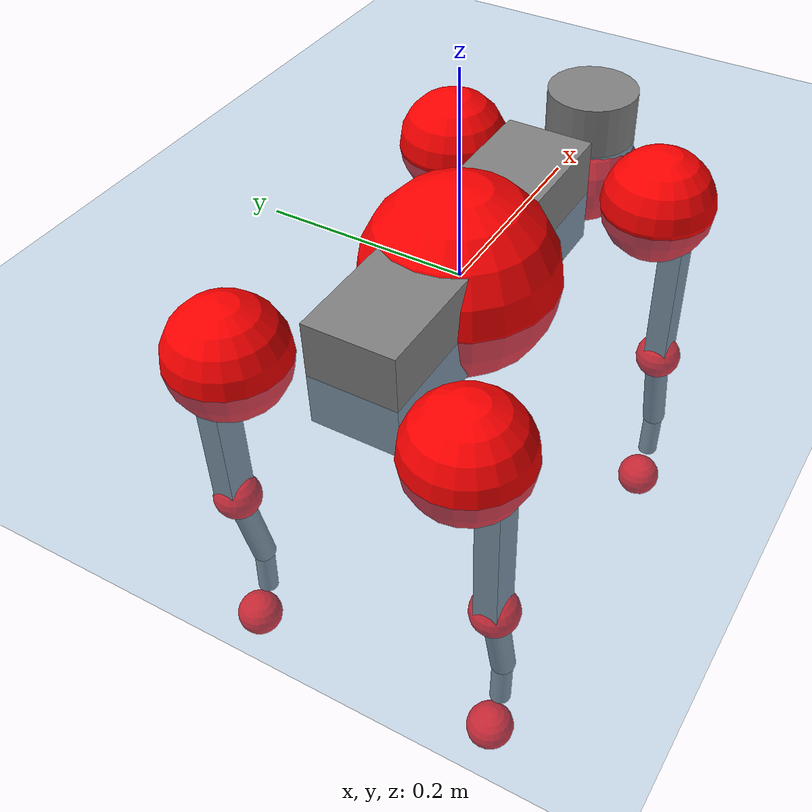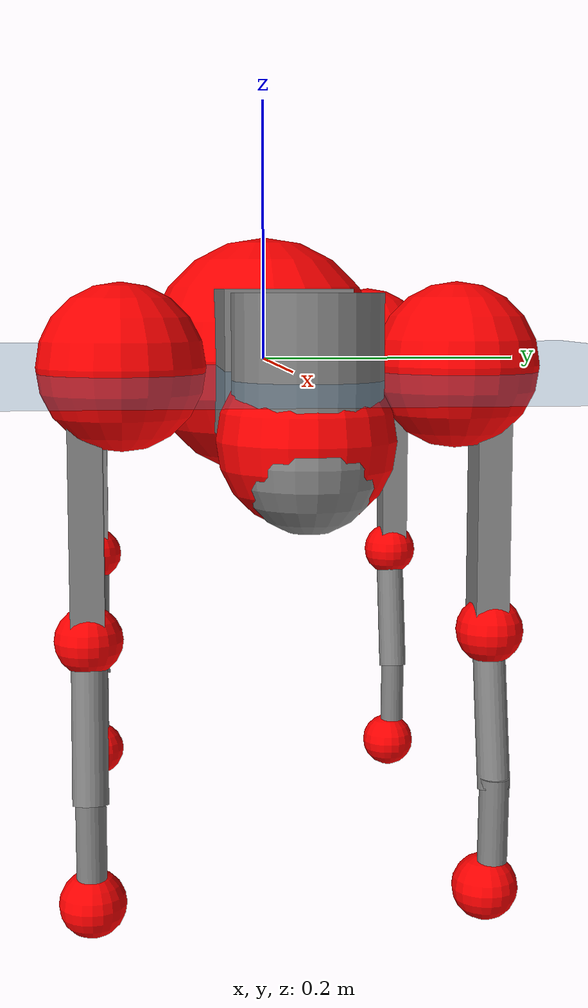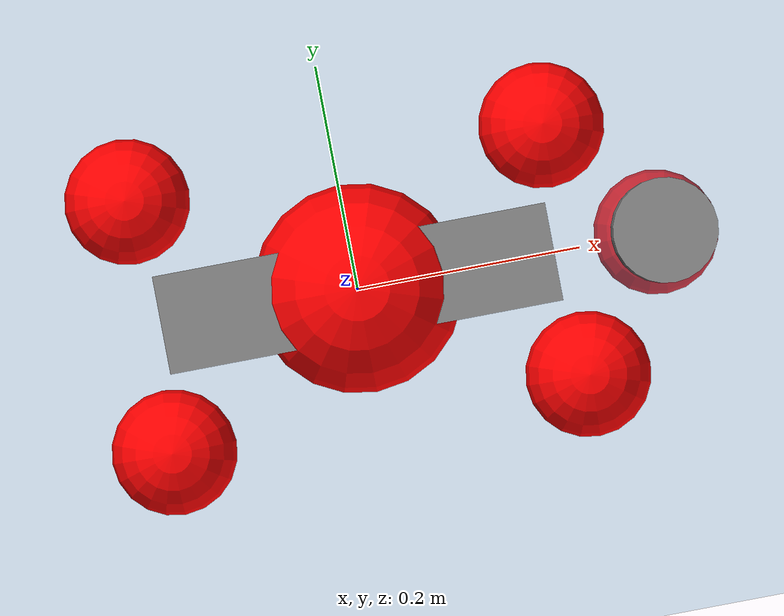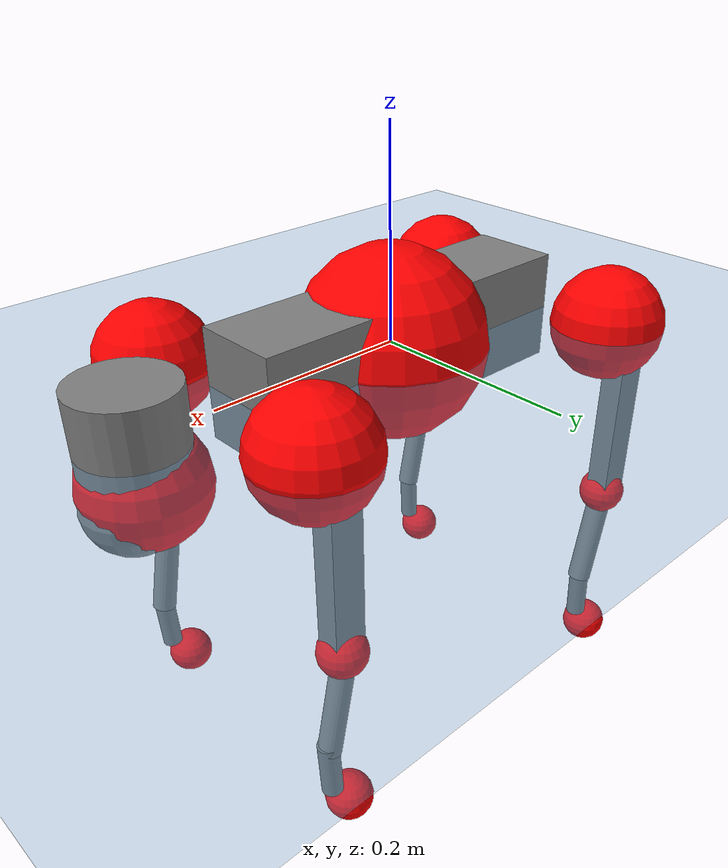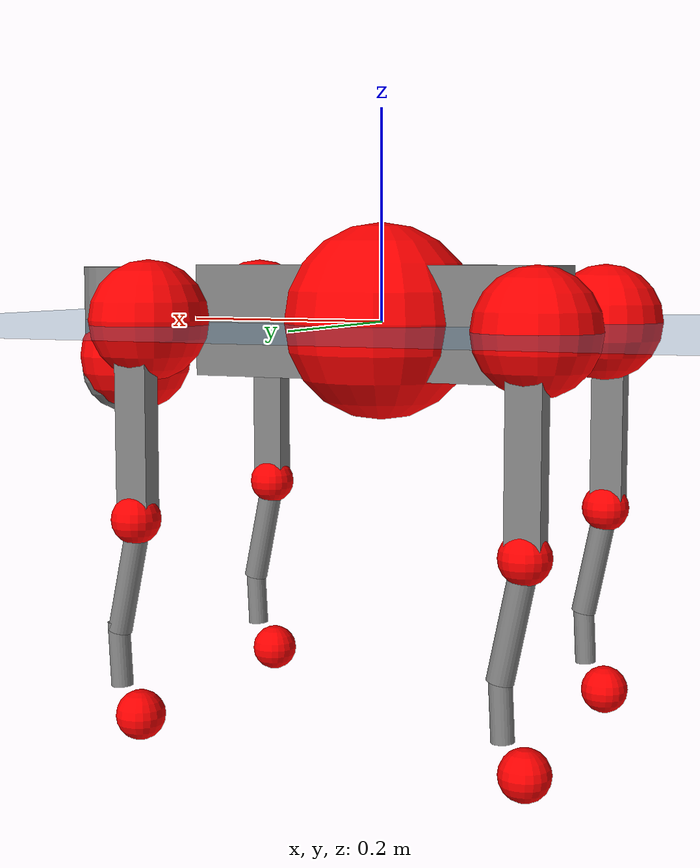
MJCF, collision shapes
<mujoco model="go2">
  <compiler angle="radian" assetdir="assets" balanceinertia="true" inertiafromgeom="false"/>

  <option timestep="0.005" density="1.2" viscosity="2e-05"/>

  <size nkey="1"/>

  <visual>
    <quality shadowsize="8192"/>
    <map shadowclip="0.5"/>
  </visual>

  <default>
    <default class="/">
      <geom contype="0" conaffinity="0" group="1" solref="-1000 -80"/>
      <site size="0.01 0.005 0.005" group="5"/>
      <general forcelimited="true" biastype="affine" gainprm="20" biasprm="0 -20 -0.5"/>
      <default class="go2">
        <joint armature="0.01" damping="0.01" frictionloss="0.2"/>
        <geom condim="1" margin="0.001"/>
        <default class="visual">
          <geom type="mesh" group="2"/>
        </default>
        <default class="collision">
          <geom group="3"/>
          <default class="foot">
            <geom size="0.022 0 0" condim="6" priority="1" friction="0.8 0.02 0.01" solimp="0.015 1 0.022"/>
          </default>
        </default>
        <default class="reward_collision_sphere">
          <geom group="5" rgba="1 0 0 1"/>
        </default>
      </default>
    </default>
  </default>

  <asset>
    <texture type="skybox" colorspace="auto" name="//unnamed_texture_0" builtin="gradient" rgb1="0.95 0.95 0.95" rgb2="0.95 0.95 0.95" width="100" height="600"/>
    <texture type="2d" colorspace="auto" name="texplane" builtin="checker" rgb1="0.345 0.575 0.748" rgb2="0.345 0.575 0.748" markrgb="1 1 1" width="512" height="512"/>
    <material name="MatPlane" class="/" texture="texplane" texuniform="true" texrepeat="2 2" specular="0.9"/>
    <material name="metal" class="/" rgba="0.9 0.95 0.95 1"/>
    <material name="black" class="/" rgba="0 0 0 1"/>
    <material name="white" class="/"/>
    <material name="gray" class="/" rgba="0.671705 0.692426 0.77427 1"/>
    <mesh name="base_0" class="/" file="base_0.obj"/>
    <mesh name="base_1" class="/" file="base_1.obj"/>
    <mesh name="base_2" class="/" file="base_2.obj"/>
    <mesh name="base_3" class="/" file="base_3.obj"/>
    <mesh name="base_4" class="/" file="base_4.obj"/>
    <mesh name="hip_0" class="/" file="hip_0.obj"/>
    <mesh name="hip_1" class="/" file="hip_1.obj"/>
    <mesh name="thigh_0" class="/" file="thigh_0.obj"/>
    <mesh name="thigh_1" class="/" file="thigh_1.obj"/>
    <mesh name="thigh_mirror_0" class="/" file="thigh_mirror_0.obj"/>
    <mesh name="thigh_mirror_1" class="/" file="thigh_mirror_1.obj"/>
    <mesh name="calf_0" class="/" file="calf_0.obj"/>
    <mesh name="calf_1" class="/" file="calf_1.obj"/>
    <mesh name="calf_mirror_0" class="/" file="calf_mirror_0.obj"/>
    <mesh name="calf_mirror_1" class="/" file="calf_mirror_1.obj"/>
    <mesh name="foot" class="/" file="foot.obj"/>
  </asset>

  <worldbody>
    <geom name="floor" class="/" size="100 100 0.125" type="plane" group="0" material="MatPlane"/>
    <light name="toplight_shadow" class="/" pos="0 0 5" dir="0.0990148 0.0990148 -0.990148" type="directional" ambient="0.04 0.04 0.04" diffuse="0.55 0.55 0.55" specular="0.12 0.12 0.12"/>
    <light name="toplight_fill" class="/" pos="0 0 5" dir="0.0990148 0.0990148 -0.990148" type="directional" castshadow="false" ambient="0.04 0.04 0.04" diffuse="0.3 0.3 0.3" specular="0.08 0.08 0.08"/>
    <body name="trunk" childclass="go2" pos="0.000221062 0.000527224 0.000953816" quat="1 -4.39346e-05 -0.000219738 0.000201833">
      <inertial pos="0.0211958 -0.000765777 -0.00463579" quat="-0.0020343 0.713388 -0.000611214 0.700766" mass="5.60079" diaginertia="0.0920149 0.08179 0.0123167"/>
      <joint name="//unnamed_joint_0" type="free" armature="0" damping="0" frictionloss="0"/>
      <geom name="//unnamed_geom_1" class="visual" material="black" mesh="base_0"/>
      <geom name="//unnamed_geom_2" class="visual" material="black" mesh="base_1"/>
      <geom name="//unnamed_geom_3" class="visual" material="black" mesh="base_2"/>
      <geom name="//unnamed_geom_4" class="visual" material="white" mesh="base_3"/>
      <geom name="//unnamed_geom_5" class="visual" material="gray" mesh="base_4"/>
      <geom name="trunk_1" class="collision" size="0.175403 0.0435944 0.0531525" type="box"/>
      <geom name="trunk_2" class="collision" size="0.046625 0.0419625" pos="0.275298 0 0.00867565" type="cylinder"/>
      <geom name="trunk_3" class="collision" size="0.0438275" pos="0.283025 0 -0.0520539"/>
      <geom name="//unnamed_geom_9" class="reward_collision_sphere" size="0.09325"/>
      <geom name="//unnamed_geom_10" class="reward_collision_sphere" size="0.05595" pos="0.270468 0 -0.0390404"/>
      <site name="imu" pos="-0.0290165 -0.00919577 0.0405117" size="0.009325"/>
      <camera name="track" pos="0 -1.92795 0" quat="0.707107 0.707107 0 0" mode="trackcom"/>
      <camera name="ego_camera" pos="0.301379 0 0.0390404" quat="-0.5 -0.5 0.5 0.5"/>
      <body name="FL_hip" pos="0.186469 0.0443425 0.00239217" quat="1 -0.000320131 -0.000270291 0.000706033">
        <inertial pos="-0.00417952 0.002256 -1.93541e-05" quat="0.497488 0.499007 0.505566 0.497896" mass="0.558097" diaginertia="0.000755184 0.000504932 0.000236797"/>
        <joint name="FL_hip_joint" pos="0 0 0" axis="0.999994 0.00213855 -0.00285786" range="-1.0254 1.04682" armature="0.00933175" damping="0.00907498" frictionloss="0.181763"/>
        <geom name="//unnamed_geom_11" class="visual" material="metal" mesh="hip_0"/>
        <geom name="//unnamed_geom_12" class="visual" material="gray" mesh="hip_1"/>
        <geom name="//unnamed_geom_13" class="collision" size="0.042895 0.01865" pos="0 0.0771181 0" quat="0.707107 0.707107 0 0" type="cylinder"/>
        <geom name="//unnamed_geom_14" class="reward_collision_sphere" size="0.05595" pos="0 0.0674784 0"/>
        <body name="FL_thigh" pos="-1.09162e-05 0.0920728 0.00214286" quat="1 -0.000139886 -0.000134787 2.98615e-05">
          <inertial pos="-0.00366821 -0.0226012 -0.0301006" quat="0.829112 0.0837176 -0.0212406 0.552371" mass="0.926972" diaginertia="0.00502062 0.00490503 0.000432807"/>
          <joint name="FL_thigh_joint" pos="0 0 0" axis="0.000453925 1 -0.00045699" range="-1.57207 3.5275" armature="0.00968455" damping="0" frictionloss="0.186746"/>
          <geom name="//unnamed_geom_15" class="visual" material="metal" mesh="thigh_0"/>
          <geom name="//unnamed_geom_16" class="visual" material="gray" mesh="thigh_1"/>
          <geom name="//unnamed_geom_17" class="collision" size="0.0993112 0.0114231 0.0158525" pos="0 0 -0.0923957" quat="0.707107 0 0.707107 0" type="box"/>
          <body name="FL_calf" pos="0.0010721 0.00133426 -0.185071" quat="1 3.31248e-05 0.00010374 -0.000128702">
            <inertial pos="0.00665949 0.00050133 -0.12243" quat="0.710389 0.00171947 -0.00410521 0.703796" mass="0.197983" diaginertia="0.00124432 0.0012136 2.59996e-05"/>
            <joint name="FL_calf_joint" pos="0 0 0" axis="0.00180351 0.999989 -0.00428509" range="-2.73424 -0.852008" armature="0.00921504" damping="0.00423916" frictionloss="0.18186"/>
            <geom name="//unnamed_geom_18" class="visual" material="gray" mesh="calf_0"/>
            <geom name="//unnamed_geom_19" class="visual" material="black" mesh="calf_1"/>
            <geom name="FL_calf0" class="collision" size="0.01119 0.05595" pos="0.00772766 0 -0.0520539" quat="0.994493 0 -0.104807 0" type="cylinder"/>
            <geom name="//unnamed_geom_21" class="collision" size="0.0102575 0.0303062" pos="0.0193191 0 -0.1284" quat="0.999688 0 0.0249974 0" type="cylinder"/>
            <geom name="//unnamed_geom_22" class="visual" pos="0 0 -0.184791" quat="1 0 0 0" material="black" mesh="foot"/>
            <geom name="FL_foot" class="foot" size="0.0169183" pos="-0.00193191 0 -0.184791"/>
            <geom name="//unnamed_geom_24" class="reward_collision_sphere" size="0.0233125"/>
            <geom name="//unnamed_geom_25" class="reward_collision_sphere" size="0.0233125" pos="-0.00193191 0 -0.184791"/>
            <site name="FL_foot" class="foot" pos="-0.00193191 0 -0.184791" size="0.009325"/>
          </body>
        </body>
      </body>
      <body name="FR_hip" pos="0.186471 -0.045038 0.0019673" quat="1 -6.09787e-06 -8.03168e-06 -3.66534e-05">
        <inertial pos="-0.0048917 -0.00135195 -0.000558715" quat="0.502058 0.50086 0.500156 0.496912" mass="0.55959" diaginertia="0.000765148 0.000498888 0.000241172"/>
        <joint name="FR_hip_joint" pos="0 0 0" axis="0.999999 -0.00110095 0.000136181" stiffness="0.00618865" range="-1.05051 1.04957" armature="0.00926932" damping="0.0117809" frictionloss="0.180527"/>
        <geom name="//unnamed_geom_26" class="visual" pos="0 8.39895e-10 3.60248e-08" quat="4.63268e-05 1 0 0" material="metal" mesh="hip_0"/>
        <geom name="//unnamed_geom_27" class="visual" pos="0 1.36157e-09 -8.91032e-08" quat="4.63268e-05 1 0 0" material="gray" mesh="hip_1"/>
        <geom name="//unnamed_geom_28" class="collision" size="0.042895 0.01865" pos="0 -0.0771181 0" quat="0.707107 0.707107 0 0" type="cylinder"/>
        <geom name="//unnamed_geom_29" class="reward_collision_sphere" size="0.05595" pos="0 -0.0674784 0"/>
        <body name="FR_thigh" pos="-0.000640058 -0.0919258 0.000552053" quat="1 0.000151619 0.000100927 0.000192488">
          <inertial pos="-0.0037906 0.0215462 -0.0296736" quat="0.558637 -0.0194543 0.0798635 0.825329" mass="0.943907" diaginertia="0.00514631 0.0049465 0.000439479"/>
          <joint name="FR_thigh_joint" pos="0 0 0" axis="-0.000719465 -0.999999 -0.000808065" range="-3.51834 1.57448" armature="0.00920745" damping="0.0141492" frictionloss="0.187492"/>
          <geom name="//unnamed_geom_30" class="visual" material="metal" mesh="thigh_mirror_0"/>
          <geom name="//unnamed_geom_31" class="visual" material="gray" mesh="thigh_mirror_1"/>
          <geom name="//unnamed_geom_32" class="collision" size="0.0993112 0.0114231 0.0158525" pos="0 0 -0.0923957" quat="0.707107 0 0.707107 0" type="box"/>
          <body name="FR_calf" pos="-0.000305445 0.000355617 -0.183835" quat="1 5.01694e-06 7.21328e-07 1.15075e-05">
            <inertial pos="0.00632352 0.000433057 -0.120986" quat="0.705471 -0.00651837 -0.00131948 0.708707" mass="0.19066" diaginertia="0.00120887 0.00121542 2.51499e-05"/>
            <joint name="FR_calf_joint" pos="0 0 0" axis="0.00145974 -0.999981 -0.00590576" range="0.834502 2.74133" armature="0.00927865" damping="0.00856303" frictionloss="0.185928"/>
            <geom name="//unnamed_geom_33" class="visual" material="gray" mesh="calf_mirror_0"/>
            <geom name="//unnamed_geom_34" class="visual" material="black" mesh="calf_mirror_1"/>
            <geom name="FR_calf0" class="collision" size="0.0121225 0.05595" pos="0.00965957 0 -0.0520539" quat="0.995004 0 -0.0998334 0" type="cylinder"/>
            <geom name="//unnamed_geom_36" class="collision" size="0.0102575 0.0303062" pos="0.0193191 0 -0.1284" quat="0.999688 0 0.0249974 0" type="cylinder"/>
            <geom name="//unnamed_geom_37" class="visual" pos="0 0 -0.184791" quat="1 0 0 0" material="black" mesh="foot"/>
            <geom name="FR_foot" class="foot" size="0.0223091" pos="-0.00193191 0 -0.184791"/>
            <geom name="//unnamed_geom_39" class="reward_collision_sphere" size="0.0233125"/>
            <geom name="//unnamed_geom_40" class="reward_collision_sphere" size="0.0233125" pos="-0.00193191 0 -0.184791"/>
            <site name="FR_foot" class="foot" pos="-0.00193191 0 -0.184791" size="0.009325"/>
          </body>
        </body>
      </body>
      <body name="RL_hip" pos="-0.186945 0.0458382 -0.00162196" quat="1 -0.000174549 -0.000153643 -0.000402842">
        <inertial pos="0.00526626 0.00182898 -0.00151995" quat="0.503586 0.497824 0.498676 0.499894" mass="0.553875" diaginertia="0.000745708 0.000495742 0.000234958"/>
        <joint name="RL_hip_joint" pos="0 0 0" axis="-0.999894 -0.00656388 0.0130008" range="-1.01387 1.06611" armature="0.00927206" damping="0.0049514" frictionloss="0.19612"/>
        <geom name="//unnamed_geom_41" class="visual" pos="-8.57148e-10 0 -1.68021e-07" quat="4.63268e-05 0 1 0" material="metal" mesh="hip_0"/>
        <geom name="//unnamed_geom_42" class="visual" pos="-1.38954e-09 0 -1.49011e-07" quat="4.63268e-05 0 1 0" material="gray" mesh="hip_1"/>
        <geom name="//unnamed_geom_43" class="collision" size="0.042895 0.01865" pos="0 0.0771181 0" quat="0.707107 0.707107 0 0" type="cylinder"/>
        <geom name="//unnamed_geom_44" class="reward_collision_sphere" size="0.05595" pos="0 0.0674784 0"/>
        <body name="RL_thigh" pos="-1.7406e-06 0.0918152 -0.00151289" quat="1 -3.00513e-06 -1.70906e-05 1.25977e-05">
          <inertial pos="-0.00438949 -0.0207369 -0.0302582" quat="0.830625 0.0813237 -0.0231017 0.550377" mass="0.918626" diaginertia="0.00486295 0.0047865 0.000420962"/>
          <joint name="RL_thigh_joint" pos="0 0 0" axis="0.0036493 0.999992 0.00148647" stiffness="0.001752" range="-0.543933 4.53736" armature="0.00895588" damping="0.0105678" frictionloss="0.187229"/>
          <geom name="//unnamed_geom_45" class="visual" material="metal" mesh="thigh_0"/>
          <geom name="//unnamed_geom_46" class="visual" material="gray" mesh="thigh_1"/>
          <geom name="//unnamed_geom_47" class="collision" size="0.0993112 0.0114231 0.0158525" pos="0 0 -0.0923957" quat="0.707107 0 0.707107 0" type="box"/>
          <body name="RL_calf" pos="0.000937617 -0.00204537 -0.185109" quat="1 0.000148491 -0.000128231 1.13248e-05">
            <inertial pos="0.00519641 0.000308524 -0.123081" quat="0.709957 0.000746491 -0.0036225 0.704236" mass="0.19623" diaginertia="0.0012566 0.00120746 2.64048e-05"/>
            <joint name="RL_calf_joint" pos="0 0 0" axis="-0.00601899 0.999942 -0.00897996" range="-2.73197 -0.835575" armature="0.00964652" damping="0.000294891" frictionloss="0.179408"/>
            <geom name="//unnamed_geom_48" class="visual" material="gray" mesh="calf_0"/>
            <geom name="//unnamed_geom_49" class="visual" material="black" mesh="calf_1"/>
            <geom name="RL_calf0" class="collision" size="0.0121225 0.05595" pos="0.00965957 0 -0.0520539" quat="0.995004 0 -0.0998334 0" type="cylinder"/>
            <geom name="//unnamed_geom_51" class="collision" size="0.0102575 0.0303062" pos="0.0193191 0 -0.1284" quat="0.999688 0 0.0249974 0" type="cylinder"/>
            <geom name="//unnamed_geom_52" class="visual" pos="0 0 -0.184791" quat="1 0 0 0" material="black" mesh="foot"/>
            <geom name="RL_foot" class="foot" size="0.0184057" pos="-0.00193191 0 -0.184791"/>
            <geom name="//unnamed_geom_54" class="reward_collision_sphere" size="0.0233125"/>
            <geom name="//unnamed_geom_55" class="reward_collision_sphere" size="0.0233125" pos="-0.00193191 0 -0.184791"/>
            <site name="RL_foot" class="foot" pos="-0.00193191 0 -0.184791" size="0.009325"/>
          </body>
        </body>
      </body>
      <body name="RR_hip" pos="-0.186891 -0.0452436 -0.00185193" quat="1 -0.000167224 -0.000123728 0.000363185">
        <inertial pos="0.00485155 -0.00102057 0.000191833" quat="0.498967 0.497077 0.498287 0.505625" mass="0.531933" diaginertia="0.000723897 0.00048381 0.000231366"/>
        <joint name="RR_hip_joint" pos="0 0 0" axis="-0.999992 -0.000348643 -0.00401026" range="-1.06458 1.04125" armature="0.00974774" damping="0.00125918" frictionloss="0.179584"/>
        <geom name="//unnamed_geom_56" class="visual" pos="8.5708e-10 8.39895e-10 -2.04046e-07" quat="2.14617e-09 4.63268e-05 4.63268e-05 -1" material="metal" mesh="hip_0"/>
        <geom name="//unnamed_geom_57" class="visual" pos="1.38971e-09 1.36157e-09 -5.99074e-08" quat="2.14617e-09 4.63268e-05 4.63268e-05 -1" material="gray" mesh="hip_1"/>
        <geom name="//unnamed_geom_58" class="collision" size="0.042895 0.01865" pos="0 -0.0771181 0" quat="0.707107 0.707107 0 0" type="cylinder"/>
        <geom name="//unnamed_geom_59" class="reward_collision_sphere" size="0.05595" pos="0 -0.0674784 0"/>
        <body name="RR_thigh" pos="0.00046744 -0.0926458 0.000103439" quat="1 2.35539e-05 -1.56364e-05 7.39025e-05">
          <inertial pos="-0.00282045 0.0214406 -0.0284701" quat="0.551478 -0.020134 0.0852838 0.829574" mass="0.924053" diaginertia="0.00491481 0.00481368 0.000431452"/>
          <joint name="RR_thigh_joint" pos="0 0 0" axis="0.00664698 -0.999935 0.00928663" range="-4.56472 0.544314" armature="0.00914887" damping="0.011291" frictionloss="0.181839"/>
          <geom name="//unnamed_geom_60" class="visual" material="metal" mesh="thigh_mirror_0"/>
          <geom name="//unnamed_geom_61" class="visual" material="gray" mesh="thigh_mirror_1"/>
          <geom name="//unnamed_geom_62" class="collision" size="0.0993112 0.0114231 0.0158525" pos="0 0 -0.0923957" quat="0.707107 0 0.707107 0" type="box"/>
          <body name="RR_calf" pos="0.00235562 -0.00038946 -0.185454" quat="1 -6.31868e-05 9.59629e-06 7.94828e-05">
            <inertial pos="0.00518866 0.000663043 -0.122679" quat="0.702423 -0.00300857 0.00297766 0.711747" mass="0.196788" diaginertia="0.00125695 0.00122132 2.62577e-05"/>
            <joint name="RR_calf_joint" pos="0 0 0" axis="-0.00160567 -0.999973 -0.00723955" range="0.840244 2.71021" armature="0.00974349" damping="0.00382927" frictionloss="0.188431"/>
            <geom name="//unnamed_geom_63" class="visual" material="gray" mesh="calf_mirror_0"/>
            <geom name="//unnamed_geom_64" class="visual" material="black" mesh="calf_mirror_1"/>
            <geom name="RR_calf0" class="collision" size="0.0121225 0.05595" pos="0.00965957 0 -0.0520539" quat="0.995004 0 -0.0998334 0" type="cylinder"/>
            <geom name="//unnamed_geom_66" class="collision" size="0.0102575 0.0303062" pos="0.0193191 0 -0.1284" quat="0.999688 0 0.0249974 0" type="cylinder"/>
            <geom name="//unnamed_geom_67" class="visual" pos="0 0 -0.184791" quat="1 0 0 0" material="black" mesh="foot"/>
            <geom name="RR_foot" class="foot" size="0.0231829" pos="-0.00193191 0 -0.184791"/>
            <geom name="//unnamed_geom_69" class="reward_collision_sphere" size="0.0233125"/>
            <geom name="//unnamed_geom_70" class="reward_collision_sphere" size="0.0233125" pos="-0.00193191 0 -0.184791"/>
            <site name="RR_foot" class="foot" pos="-0.00193191 0 -0.184791" size="0.009325"/>
          </body>
        </body>
      </body>
    </body>
  </worldbody>

  <contact>
    <pair class="/" geom1="floor" geom2="FL_foot" name="//unnamed_contact_0"/>
    <pair class="/" geom1="floor" geom2="FR_foot" name="//unnamed_contact_1"/>
    <pair class="/" geom1="floor" geom2="RL_foot" name="//unnamed_contact_2"/>
    <pair class="/" geom1="floor" geom2="RR_foot" name="//unnamed_contact_3"/>
  </contact>

  <actuator>
    <general name="FL_hip" class="/" joint="FL_hip_joint" forcerange="-22.5109 22.5109" gainprm="18.9662" biasprm="0 -18.9662 -0.474029"/>
    <general name="FL_thigh" class="/" joint="FL_thigh_joint" forcerange="-22.7357 22.7357" gainprm="18.9662" biasprm="0 -18.9662 -0.474029"/>
    <general name="FL_calf" class="/" joint="FL_calf_joint" forcerange="-40.4979 40.4979" gainprm="18.9662" biasprm="0 -18.9662 -0.474029"/>
    <general name="FR_hip" class="/" joint="FR_hip_joint" forcerange="-22.3288 22.3288" gainprm="18.9662" biasprm="0 -18.9662 -0.474029"/>
    <general name="FR_thigh" class="/" joint="FR_thigh_joint" forcerange="-21.4177 21.4177" gainprm="18.9662" biasprm="0 -18.9662 -0.474029"/>
    <general name="FR_calf" class="/" joint="FR_calf_joint" forcerange="-45.3276 45.3276" gainprm="18.9662" biasprm="0 -18.9662 -0.474029"/>
    <general name="RL_hip" class="/" joint="RL_hip_joint" forcerange="-23.1329 23.1329" gainprm="18.9662" biasprm="0 -18.9662 -0.474029"/>
    <general name="RL_thigh" class="/" joint="RL_thigh_joint" forcerange="-21.3445 21.3445" gainprm="18.9662" biasprm="0 -18.9662 -0.474029"/>
    <general name="RL_calf" class="/" joint="RL_calf_joint" forcerange="-42.0565 42.0565" gainprm="18.9662" biasprm="0 -18.9662 -0.474029"/>
    <general name="RR_hip" class="/" joint="RR_hip_joint" forcerange="-22.3173 22.3173" gainprm="18.9662" biasprm="0 -18.9662 -0.474029"/>
    <general name="RR_thigh" class="/" joint="RR_thigh_joint" forcerange="-20.6367 20.6367" gainprm="18.9662" biasprm="0 -18.9662 -0.474029"/>
    <general name="RR_calf" class="/" joint="RR_calf_joint" forcerange="-41.9954 41.9954" gainprm="18.9662" biasprm="0 -18.9662 -0.474029"/>
  </actuator>

  <sensor>
    <gyro site="imu" name="imu_angular_velocity"/>
    <velocimeter site="imu" name="imu_linear_velocity"/>
    <framelinvel objtype="site" objname="FL_foot" name="FL_foot_global_linear_velocity"/>
    <framelinvel objtype="site" objname="FR_foot" name="FR_foot_global_linear_velocity"/>
    <framelinvel objtype="site" objname="RL_foot" name="RL_foot_global_linear_velocity"/>
    <framelinvel objtype="site" objname="RR_foot" name="RR_foot_global_linear_velocity"/>
  </sensor>

  <keyframe>
    <key name="home" qpos="0 0 0.325 1 0 0 0 0.1 0.8 -1.5 -0.1 -0.8 1.5 -0.1 0.8 -1.5 0.1 -0.8 1.5"/>
  </keyframe>
</mujoco>
